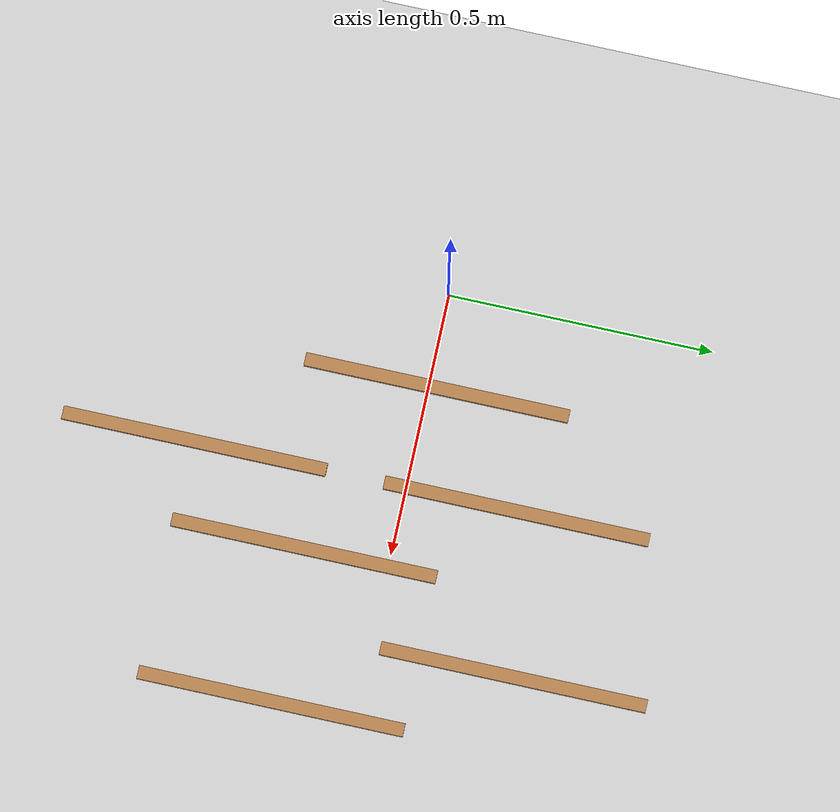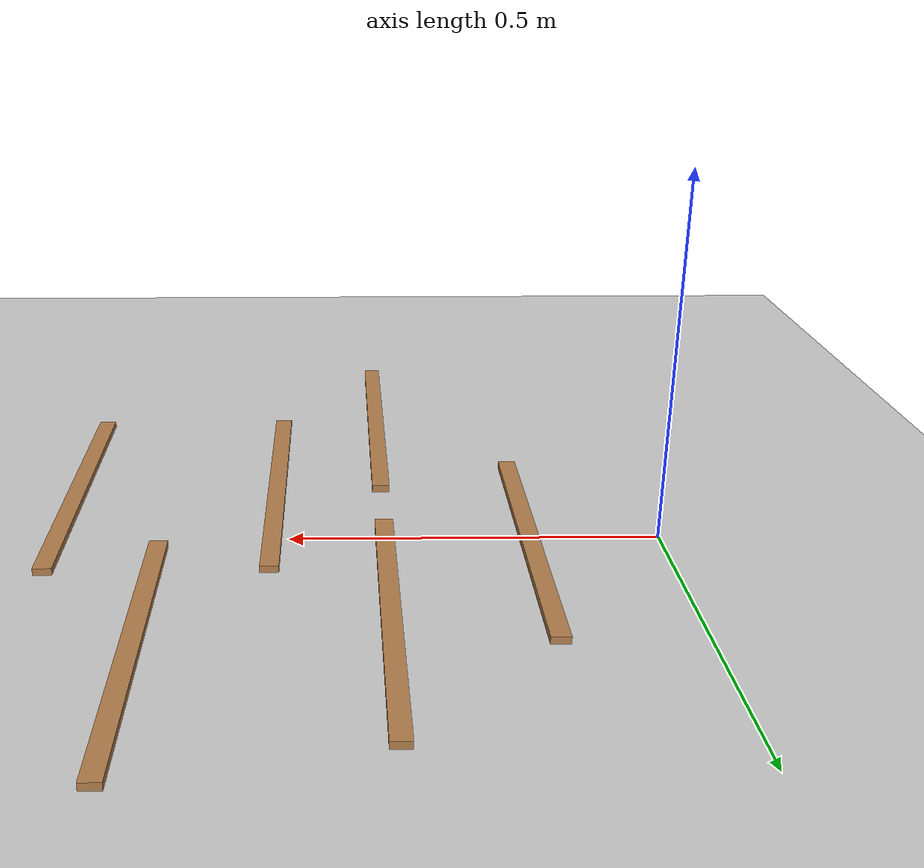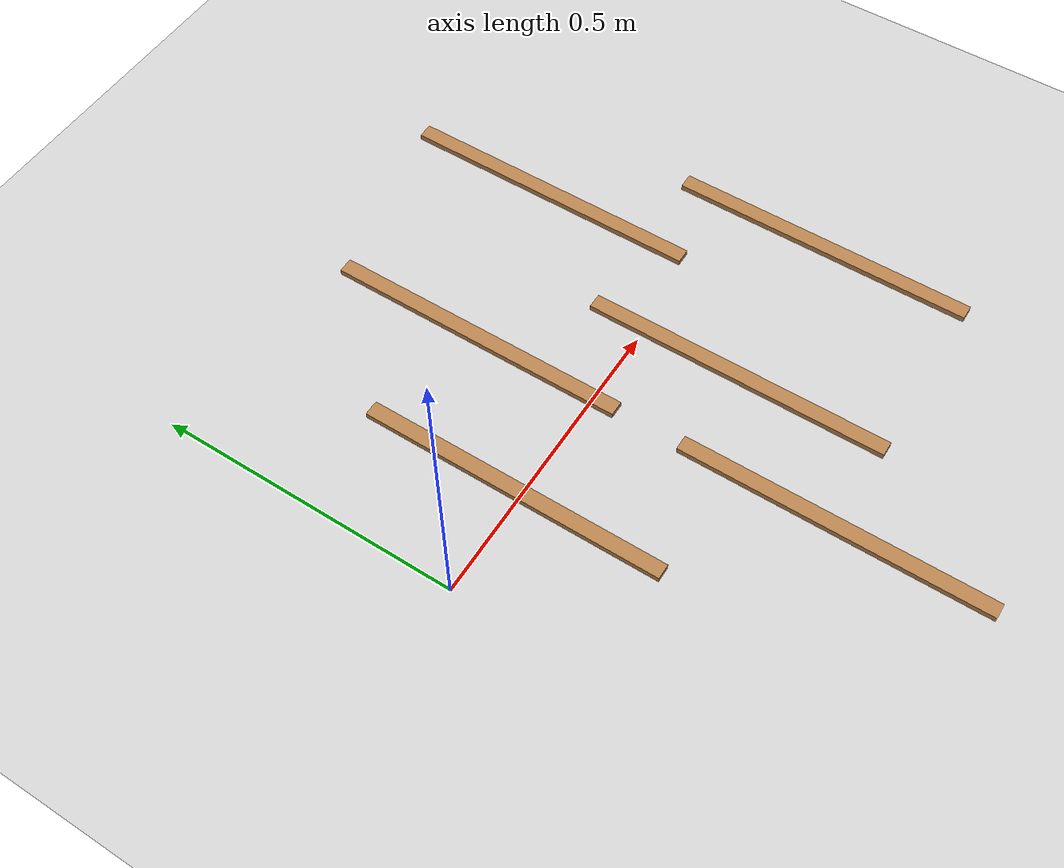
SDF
<sdf version="1.7">
 <world name="default">
  <light name="sun" type="directional">
   <pose>0 0 10 0 -0 0</pose>
   <diffuse>0.8 0.8 0.8 1</diffuse>
   <specular>0.2 0.2 0.2 1</specular>
   <attenuation>
    <range>1000</range>
    <constant>0.9</constant>
    <linear>0.01</linear>
    <quadratic>0.001</quadratic>
   </attenuation>
   <direction>-0.5 0.1 -0.9</direction>
   <spot><inner_angle>0</inner_angle><outer_angle>0</outer_angle><falloff>0</falloff></spot>
  </light>
  <model name="ground_plane">
   <static>1</static>
   <link name="link">
    <collision name="collision">
     <geometry><plane><normal>0 0 1</normal><size>100 100</size></plane></geometry>
     <surface>
      <contact><collide_bitmask>65535</collide_bitmask></contact>
      <friction><ode><mu>100</mu><mu2>50</mu2></ode></friction>
     </surface>
    </collision>
    <visual name="visual">
     <cast_shadows>0</cast_shadows>
     <geometry><plane><normal>0 0 1</normal><size>100 100</size></plane></geometry>
     <material>
      <script><uri>file://media/materials/scripts/gazebo.material</uri><name>Gazebo/Grey</name></script>
     </material>
    </visual>
   </link>
  </model>
  <gravity>0 0 -9.8</gravity>
  <magnetic_field>6e-06 2.3e-05 -4.2e-05</magnetic_field>
  <atmosphere type="adiabatic"/>
  <physics type="ode">
   <max_step_size>0.001</max_step_size>
   <real_time_factor>1</real_time_factor>
   <real_time_update_rate>1000</real_time_update_rate>
  </physics>
  <scene><ambient>0.4 0.4 0.4 1</ambient><background>0.7 0.7 0.7 1</background><shadows>1</shadows></scene>
  <spherical_coordinates>
   <surface_model>EARTH_WGS84</surface_model>
   <latitude_deg>0</latitude_deg>
   <longitude_deg>0</longitude_deg>
   <elevation>0</elevation>
   <heading_deg>0</heading_deg>
  </spherical_coordinates>
  <model name="map1.world">
   <link name="link">
    <pose>-0.340777 0.325675 0.004995 0 -0 0</pose>
    <inertial>
     <mass>0.0125</mass>
     <inertia>
      <ixx>7.6e-07</ixx>
      <ixy>0</ixy>
      <ixz>0</ixz>
      <iyy>1.052e-05</iyy>
      <iyz>0</iyz>
      <izz>1.107e-05</izz>
     </inertia>
    </inertial>
    <visual name="visual">
     <geometry><box><size>0.025 0.5 0.01</size></box></geometry>
     <material>
      <script><uri>file://media/materials/scripts/gazebo.material</uri><name>Gazebo/Wood</name></script>
      <shader type="pixel"><normal_map>__default__</normal_map></shader>
      <ambient>1 1 1 1</ambient>
      <diffuse>1 1 1 1</diffuse>
      <specular>0.2 0.2 0.2 1</specular>
      <emissive>0 0 0 1</emissive>
     </material>
    </visual>
    <collision name="collision">
     <geometry><box><size>0.1 0.025 0.01</size></box></geometry>
     <surface>
      <friction>
       <ode><mu>1</mu><mu2>1</mu2><fdir1>0 0 0</fdir1><slip1>0</slip1><slip2>0</slip2></ode>
       <torsional>
        <coefficient>1</coefficient>
        <patch_radius>0</patch_radius>
        <surface_radius>0.05</surface_radius>
        <use_patch_radius>0</use_patch_radius>
        <ode><slip>0</slip></ode>
       </torsional>
      </friction>
      <bounce><restitution_coefficient>0</restitution_coefficient><threshold>1e+06</threshold></bounce>
      <contact>
       <collide_without_contact>0</collide_without_contact>
       <collide_without_contact_bitmask>1</collide_without_contact_bitmask>
       <collide_bitmask>1</collide_bitmask>
       <ode>
        <soft_cfm>0</soft_cfm>
        <soft_erp>0.2</soft_erp>
        <kp>100000</kp>
        <kd>1</kd>
        <max_vel>1</max_vel>
        <min_depth>0.001</min_depth>
       </ode>
       <bullet>
        <split_impulse>1</split_impulse>
        <split_impulse_penetration_threshold>-0.01</split_impulse_penetration_threshold>
        <soft_cfm>0</soft_cfm>
        <soft_erp>0.2</soft_erp>
        <kp>100000</kp>
        <kd>1</kd>
       </bullet>
      </contact>
     </surface>
    </collision>
   </link>
   <link name="link_clone">
    <pose>-0.146574 0.518972 0.004984 -2.3e-05 6e-06 0</pose>
    <inertial>
     <mass>0.0125</mass>
     <inertia>
      <ixx>7.6e-07</ixx>
      <ixy>0</ixy>
      <ixz>0</ixz>
      <iyy>1.052e-05</iyy>
      <iyz>0</iyz>
      <izz>1.107e-05</izz>
     </inertia>
    </inertial>
    <visual name="visual">
     <geometry><box><size>0.025 0.5 0.01</size></box></geometry>
     <material>
      <script><uri>file://media/materials/scripts/gazebo.material</uri><name>Gazebo/Wood</name></script>
      <shader type="pixel"><normal_map>__default__</normal_map></shader>
      <ambient>1 1 1 1</ambient>
      <diffuse>1 1 1 1</diffuse>
      <specular>0.2 0.2 0.2 1</specular>
      <emissive>0 0 0 1</emissive>
     </material>
    </visual>
    <collision name="collision">
     <geometry><box><size>0.1 0.025 0.01</size></box></geometry>
     <surface>
      <friction>
       <ode><mu>1</mu><mu2>1</mu2><fdir1>0 0 0</fdir1><slip1>0</slip1><slip2>0</slip2></ode>
       <torsional>
        <coefficient>1</coefficient>
        <patch_radius>0</patch_radius>
        <surface_radius>0</surface_radius>
        <use_patch_radius>1</use_patch_radius>
        <ode><slip>0</slip></ode>
       </torsional>
      </friction>
      <bounce><restitution_coefficient>0</restitution_coefficient><threshold>1e+06</threshold></bounce>
      <contact>
       <collide_without_contact>0</collide_without_contact>
       <collide_without_contact_bitmask>1</collide_without_contact_bitmask>
       <collide_bitmask>1</collide_bitmask>
       <ode>
        <soft_cfm>0</soft_cfm>
        <soft_erp>0.2</soft_erp>
        <kp>1e+13</kp>
        <kd>1</kd>
        <max_vel>0.01</max_vel>
        <min_depth>0</min_depth>
       </ode>
       <bullet>
        <split_impulse>1</split_impulse>
        <split_impulse_penetration_threshold>-0.01</split_impulse_penetration_threshold>
        <soft_cfm>0</soft_cfm>
        <soft_erp>0.2</soft_erp>
        <kp>1e+13</kp>
        <kd>1</kd>
       </bullet>
      </contact>
     </surface>
    </collision>
   </link>
   <link name="link_clone_0">
    <pose>0.00521 0.151397 0.004992 -2.3e-05 6e-06 0</pose>
    <inertial>
     <mass>0.0125</mass>
     <inertia>
      <ixx>7.6e-07</ixx>
      <ixy>0</ixy>
      <ixz>0</ixz>
      <iyy>1.052e-05</iyy>
      <iyz>0</iyz>
      <izz>1.107e-05</izz>
     </inertia>
    </inertial>
    <visual name="visual">
     <geometry><box><size>0.025 0.5 0.01</size></box></geometry>
     <material>
      <script><uri>file://media/materials/scripts/gazebo.material</uri><name>Gazebo/Wood</name></script>
      <shader type="pixel"><normal_map>__default__</normal_map></shader>
      <ambient>1 1 1 1</ambient>
      <diffuse>1 1 1 1</diffuse>
      <specular>0.2 0.2 0.2 1</specular>
      <emissive>0 0 0 1</emissive>
     </material>
    </visual>
    <collision name="collision">
     <geometry><box><size>0.1 0.025 0.01</size></box></geometry>
     <surface>
      <friction>
       <ode><mu>1</mu><mu2>1</mu2><fdir1>0 0 0</fdir1><slip1>0</slip1><slip2>0</slip2></ode>
       <torsional>
        <coefficient>1</coefficient>
        <patch_radius>0</patch_radius>
        <surface_radius>0</surface_radius>
        <use_patch_radius>1</use_patch_radius>
        <ode><slip>0</slip></ode>
       </torsional>
      </friction>
      <bounce><restitution_coefficient>0</restitution_coefficient><threshold>1e+06</threshold></bounce>
      <contact>
       <collide_without_contact>0</collide_without_contact>
       <collide_without_contact_bitmask>1</collide_without_contact_bitmask>
       <collide_bitmask>1</collide_bitmask>
       <ode>
        <soft_cfm>0</soft_cfm>
        <soft_erp>0.2</soft_erp>
        <kp>1e+13</kp>
        <kd>1</kd>
        <max_vel>0.01</max_vel>
        <min_depth>0</min_depth>
       </ode>
       <bullet>
        <split_impulse>1</split_impulse>
        <split_impulse_penetration_threshold>-0.01</split_impulse_penetration_threshold>
        <soft_cfm>0</soft_cfm>
        <soft_erp>0.2</soft_erp>
        <kp>1e+13</kp>
        <kd>1</kd>
       </bullet>
      </contact>
     </surface>
    </collision>
   </link>
   <link name="link_clone_1">
    <pose>0.155703 0.578899 0.004981 -2.3e-05 6e-06 0</pose>
    <inertial>
     <mass>0.0125</mass>
     <inertia>
      <ixx>7.6e-07</ixx>
      <ixy>0</ixy>
      <ixz>0</ixz>
      <iyy>1.052e-05</iyy>
      <iyz>0</iyz>
      <izz>1.107e-05</izz>
     </inertia>
    </inertial>
    <visual name="visual">
     <geometry><box><size>0.025 0.5 0.01</size></box></geometry>
     <material>
      <script><uri>file://media/materials/scripts/gazebo.material</uri><name>Gazebo/Wood</name></script>
      <shader type="pixel"><normal_map>__default__</normal_map></shader>
      <ambient>1 1 1 1</ambient>
      <diffuse>1 1 1 1</diffuse>
      <specular>0.2 0.2 0.2 1</specular>
      <emissive>0 0 0 1</emissive>
     </material>
    </visual>
    <collision name="collision">
     <geometry><box><size>0.1 0.025 0.01</size></box></geometry>
     <surface>
      <friction>
       <ode><mu>1</mu><mu2>1</mu2><fdir1>0 0 0</fdir1><slip1>0</slip1><slip2>0</slip2></ode>
       <torsional>
        <coefficient>1</coefficient>
        <patch_radius>0</patch_radius>
        <surface_radius>0</surface_radius>
        <use_patch_radius>1</use_patch_radius>
        <ode><slip>0</slip></ode>
       </torsional>
      </friction>
      <bounce><restitution_coefficient>0</restitution_coefficient><threshold>1e+06</threshold></bounce>
      <contact>
       <collide_without_contact>0</collide_without_contact>
       <collide_without_contact_bitmask>1</collide_without_contact_bitmask>
       <collide_bitmask>1</collide_bitmask>
       <ode>
        <soft_cfm>0</soft_cfm>
        <soft_erp>0.2</soft_erp>
        <kp>1e+13</kp>
        <kd>1</kd>
        <max_vel>0.01</max_vel>
        <min_depth>0</min_depth>
       </ode>
       <bullet>
        <split_impulse>1</split_impulse>
        <split_impulse_penetration_threshold>-0.01</split_impulse_penetration_threshold>
        <soft_cfm>0</soft_cfm>
        <soft_erp>0.2</soft_erp>
        <kp>1e+13</kp>
        <kd>1</kd>
       </bullet>
      </contact>
     </surface>
    </collision>
   </link>
   <link name="link_clone_2">
    <pose>-0.146259 -0.08993 0.004998 -2.3e-05 6e-06 0</pose>
    <inertial>
     <mass>0.0125</mass>
     <inertia>
      <ixx>7.6e-07</ixx>
      <ixy>0</ixy>
      <ixz>0</ixz>
      <iyy>1.052e-05</iyy>
      <iyz>0</iyz>
      <izz>1.107e-05</izz>
     </inertia>
    </inertial>
    <visual name="visual">
     <geometry><box><size>0.025 0.5 0.01</size></box></geometry>
     <material>
      <script><uri>file://media/materials/scripts/gazebo.material</uri><name>Gazebo/Wood</name></script>
      <shader type="pixel"><normal_map>__default__</normal_map></shader>
      <ambient>1 1 1 1</ambient>
      <diffuse>1 1 1 1</diffuse>
      <specular>0.2 0.2 0.2 1</specular>
      <emissive>0 0 0 1</emissive>
     </material>
    </visual>
    <collision name="collision">
     <geometry><box><size>0.1 0.025 0.01</size></box></geometry>
     <surface>
      <friction>
       <ode><mu>1</mu><mu2>1</mu2><fdir1>0 0 0</fdir1><slip1>0</slip1><slip2>0</slip2></ode>
       <torsional>
        <coefficient>1</coefficient>
        <patch_radius>0</patch_radius>
        <surface_radius>0</surface_radius>
        <use_patch_radius>1</use_patch_radius>
        <ode><slip>0</slip></ode>
       </torsional>
      </friction>
      <bounce><restitution_coefficient>0</restitution_coefficient><threshold>1e+06</threshold></bounce>
      <contact>
       <collide_without_contact>0</collide_without_contact>
       <collide_without_contact_bitmask>1</collide_without_contact_bitmask>
       <collide_bitmask>1</collide_bitmask>
       <ode>
        <soft_cfm>0</soft_cfm>
        <soft_erp>0.2</soft_erp>
        <kp>1e+13</kp>
        <kd>1</kd>
        <max_vel>0.01</max_vel>
        <min_depth>0</min_depth>
       </ode>
       <bullet>
        <split_impulse>1</split_impulse>
        <split_impulse_penetration_threshold>-0.01</split_impulse_penetration_threshold>
        <soft_cfm>0</soft_cfm>
        <soft_erp>0.2</soft_erp>
        <kp>1e+13</kp>
        <kd>1</kd>
       </bullet>
      </contact>
     </surface>
    </collision>
   </link>
   <link name="link_clone_3">
    <pose>0.294912 0.154229 0.00499 -2.3e-05 6e-06 0</pose>
    <inertial>
     <mass>0.0125</mass>
     <inertia>
      <ixx>7.6e-07</ixx>
      <ixy>0</ixy>
      <ixz>0</ixz>
      <iyy>1.052e-05</iyy>
      <iyz>0</iyz>
      <izz>1.107e-05</izz>
     </inertia>
    </inertial>
    <visual name="visual">
     <geometry><box><size>0.025 0.5 0.01</size></box></geometry>
     <material>
      <script><uri>file://media/materials/scripts/gazebo.material</uri><name>Gazebo/Wood</name></script>
      <shader type="pixel"><normal_map>__default__</normal_map></shader>
      <ambient>1 1 1 1</ambient>
      <diffuse>1 1 1 1</diffuse>
      <specular>0.2 0.2 0.2 1</specular>
      <emissive>0 0 0 1</emissive>
     </material>
    </visual>
    <collision name="collision">
     <geometry><box><size>0.1 0.025 0.01</size></box></geometry>
     <surface>
      <friction>
       <ode><mu>1</mu><mu2>1</mu2><fdir1>0 0 0</fdir1><slip1>0</slip1><slip2>0</slip2></ode>
       <torsional>
        <coefficient>1</coefficient>
        <patch_radius>0</patch_radius>
        <surface_radius>0</surface_radius>
        <use_patch_radius>1</use_patch_radius>
        <ode><slip>0</slip></ode>
       </torsional>
      </friction>
      <bounce><restitution_coefficient>0</restitution_coefficient><threshold>1e+06</threshold></bounce>
      <contact>
       <collide_without_contact>0</collide_without_contact>
       <collide_without_contact_bitmask>1</collide_without_contact_bitmask>
       <collide_bitmask>1</collide_bitmask>
       <ode>
        <soft_cfm>0</soft_cfm>
        <soft_erp>0.2</soft_erp>
        <kp>1e+13</kp>
        <kd>1</kd>
        <max_vel>0.01</max_vel>
        <min_depth>0</min_depth>
       </ode>
       <bullet>
        <split_impulse>1</split_impulse>
        <split_impulse_penetration_threshold>-0.01</split_impulse_penetration_threshold>
        <soft_cfm>0</soft_cfm>
        <soft_erp>0.2</soft_erp>
        <kp>1e+13</kp>
        <kd>1</kd>
       </bullet>
      </contact>
     </surface>
    </collision>
   </link>
   <static>0</static>
   <pose>0.51774 -0.309817 -0.000296 2.3e-05 -6e-06 0</pose>
  </model>
 </world>
</sdf>
